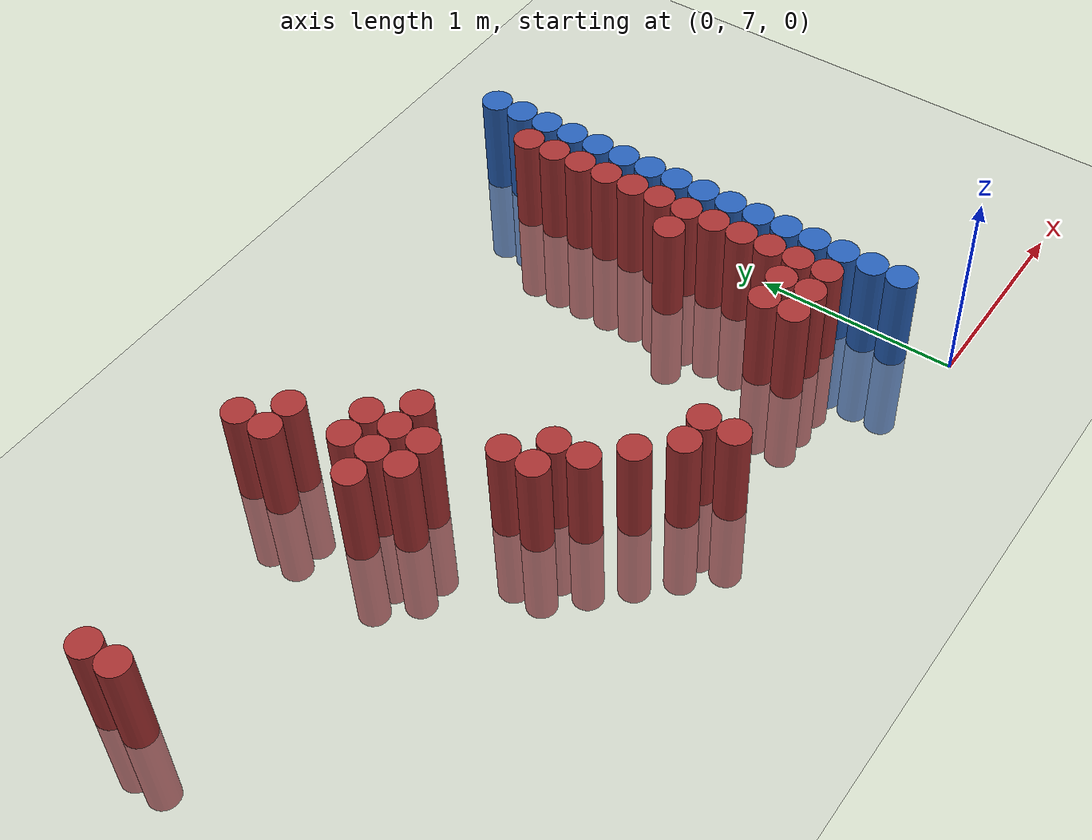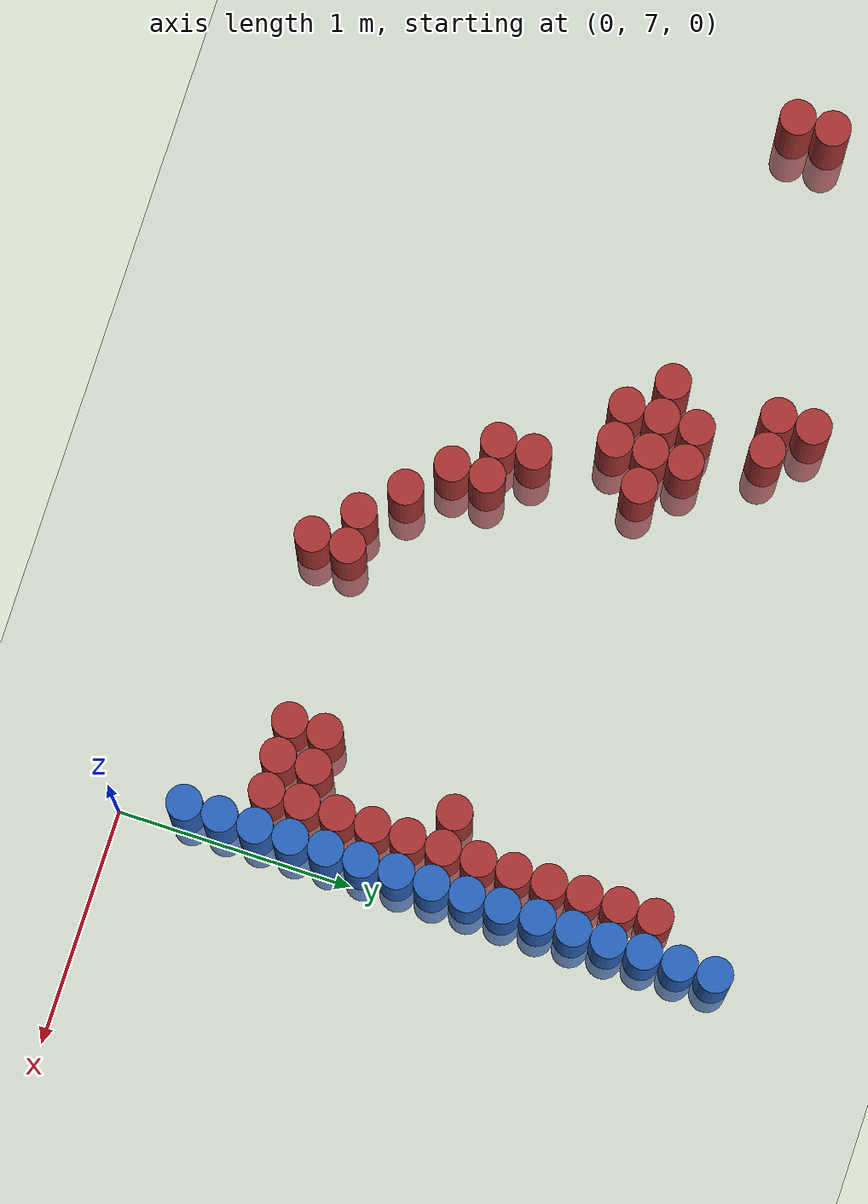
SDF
<sdf version="1.6">
 <world name="default">
  <model name="ground_plane">
   <static>1</static>
   <link name="link">
    <collision name="collision">
     <geometry><plane><normal>0 0 1</normal><size>100 100</size></plane></geometry>
     <surface><friction><ode><mu>100</mu><mu2>50</mu2></ode></friction></surface>
    </collision>
    <visual name="visual">
     <cast_shadows>0</cast_shadows>
     <geometry><plane><normal>0 0 1</normal><size>100 100</size></plane></geometry>
     <material>
      <script><uri>file://media/materials/scripts/gazebo.material</uri><name>Gazebo/Grey</name></script>
     </material>
    </visual>
   </link>
  </model>
  <model name="unit_cylinder_155">
   <static>1</static>
   <pose>-3.525000 8.775000 0.000000 0.000000 0.000000 0.000000</pose>
   <link name="link">
    <inertial>
     <mass>1</mass>
     <inertia><ixx>0.145833</ixx><ixy>0</ixy><ixz>0</ixz><iyy>0.145833</iyy><iyz>0</iyz><izz>0.125</izz></inertia>
    </inertial>
    <collision name="collision">
     <geometry><cylinder><radius>0.075000</radius><length>1</length></cylinder></geometry>
    </collision>
    <visual name="visual">
     <geometry><cylinder><radius>0.075000</radius><length>1</length></cylinder></geometry>
     <material>
      <ambient>0.648000 0.192000 0.192000 1</ambient>
      <diffuse>0.648000 0.192000 0.192000 1</diffuse>
     </material>
     <material>
      <script><name>Gazebo/Grey</name><uri>file://media/materials/scripts/gazebo.material</uri></script>
     </material>
    </visual>
   </link>
  </model>
  <model name="unit_cylinder_156">
   <static>1</static>
   <pose>-3.525000 8.925000 0.000000 0.000000 0.000000 0.000000</pose>
   <link name="link">
    <inertial>
     <mass>1</mass>
     <inertia><ixx>0.145833</ixx><ixy>0</ixy><ixz>0</ixz><iyy>0.145833</iyy><iyz>0</iyz><izz>0.125</izz></inertia>
    </inertial>
    <collision name="collision">
     <geometry><cylinder><radius>0.075000</radius><length>1</length></cylinder></geometry>
    </collision>
    <visual name="visual">
     <geometry><cylinder><radius>0.075000</radius><length>1</length></cylinder></geometry>
     <material>
      <ambient>0.648000 0.192000 0.192000 1</ambient>
      <diffuse>0.648000 0.192000 0.192000 1</diffuse>
     </material>
     <material>
      <script><name>Gazebo/Grey</name><uri>file://media/materials/scripts/gazebo.material</uri></script>
     </material>
    </visual>
   </link>
  </model>
  <model name="unit_cylinder_173">
   <static>1</static>
   <pose>-2.325000 8.625000 0.000000 0.000000 0.000000 0.000000</pose>
   <link name="link">
    <inertial>
     <mass>1</mass>
     <inertia><ixx>0.145833</ixx><ixy>0</ixy><ixz>0</ixz><iyy>0.145833</iyy><iyz>0</iyz><izz>0.125</izz></inertia>
    </inertial>
    <collision name="collision">
     <geometry><cylinder><radius>0.075000</radius><length>1</length></cylinder></geometry>
    </collision>
    <visual name="visual">
     <geometry><cylinder><radius>0.075000</radius><length>1</length></cylinder></geometry>
     <material>
      <ambient>0.648000 0.192000 0.192000 1</ambient>
      <diffuse>0.648000 0.192000 0.192000 1</diffuse>
     </material>
     <material>
      <script><name>Gazebo/Grey</name><uri>file://media/materials/scripts/gazebo.material</uri></script>
     </material>
    </visual>
   </link>
  </model>
  <model name="unit_cylinder_174">
   <static>1</static>
   <pose>-2.325000 9.075000 0.000000 0.000000 0.000000 0.000000</pose>
   <link name="link">
    <inertial>
     <mass>1</mass>
     <inertia><ixx>0.145833</ixx><ixy>0</ixy><ixz>0</ixz><iyy>0.145833</iyy><iyz>0</iyz><izz>0.125</izz></inertia>
    </inertial>
    <collision name="collision">
     <geometry><cylinder><radius>0.075000</radius><length>1</length></cylinder></geometry>
    </collision>
    <visual name="visual">
     <geometry><cylinder><radius>0.075000</radius><length>1</length></cylinder></geometry>
     <material>
      <ambient>0.648000 0.192000 0.192000 1</ambient>
      <diffuse>0.648000 0.192000 0.192000 1</diffuse>
     </material>
     <material>
      <script><name>Gazebo/Grey</name><uri>file://media/materials/scripts/gazebo.material</uri></script>
     </material>
    </visual>
   </link>
  </model>
  <model name="unit_cylinder_175">
   <static>1</static>
   <pose>-2.325000 9.225000 0.000000 0.000000 0.000000 0.000000</pose>
   <link name="link">
    <inertial>
     <mass>1</mass>
     <inertia><ixx>0.145833</ixx><ixy>0</ixy><ixz>0</ixz><iyy>0.145833</iyy><iyz>0</iyz><izz>0.125</izz></inertia>
    </inertial>
    <collision name="collision">
     <geometry><cylinder><radius>0.075000</radius><length>1</length></cylinder></geometry>
    </collision>
    <visual name="visual">
     <geometry><cylinder><radius>0.075000</radius><length>1</length></cylinder></geometry>
     <material>
      <ambient>0.648000 0.192000 0.192000 1</ambient>
      <diffuse>0.648000 0.192000 0.192000 1</diffuse>
     </material>
     <material>
      <script><name>Gazebo/Grey</name><uri>file://media/materials/scripts/gazebo.material</uri></script>
     </material>
    </visual>
   </link>
  </model>
  <model name="unit_cylinder_178">
   <static>1</static>
   <pose>-2.175000 8.475000 0.000000 0.000000 0.000000 0.000000</pose>
   <link name="link">
    <inertial>
     <mass>1</mass>
     <inertia><ixx>0.145833</ixx><ixy>0</ixy><ixz>0</ixz><iyy>0.145833</iyy><iyz>0</iyz><izz>0.125</izz></inertia>
    </inertial>
    <collision name="collision">
     <geometry><cylinder><radius>0.075000</radius><length>1</length></cylinder></geometry>
    </collision>
    <visual name="visual">
     <geometry><cylinder><radius>0.075000</radius><length>1</length></cylinder></geometry>
     <material>
      <ambient>0.648000 0.192000 0.192000 1</ambient>
      <diffuse>0.648000 0.192000 0.192000 1</diffuse>
     </material>
     <material>
      <script><name>Gazebo/Grey</name><uri>file://media/materials/scripts/gazebo.material</uri></script>
     </material>
    </visual>
   </link>
  </model>
  <model name="unit_cylinder_179">
   <static>1</static>
   <pose>-2.175000 8.625000 0.000000 0.000000 0.000000 0.000000</pose>
   <link name="link">
    <inertial>
     <mass>1</mass>
     <inertia><ixx>0.145833</ixx><ixy>0</ixy><ixz>0</ixz><iyy>0.145833</iyy><iyz>0</iyz><izz>0.125</izz></inertia>
    </inertial>
    <collision name="collision">
     <geometry><cylinder><radius>0.075000</radius><length>1</length></cylinder></geometry>
    </collision>
    <visual name="visual">
     <geometry><cylinder><radius>0.075000</radius><length>1</length></cylinder></geometry>
     <material>
      <ambient>0.648000 0.192000 0.192000 1</ambient>
      <diffuse>0.648000 0.192000 0.192000 1</diffuse>
     </material>
     <material>
      <script><name>Gazebo/Grey</name><uri>file://media/materials/scripts/gazebo.material</uri></script>
     </material>
    </visual>
   </link>
  </model>
  <model name="unit_cylinder_180">
   <static>1</static>
   <pose>-2.175000 8.775000 0.000000 0.000000 0.000000 0.000000</pose>
   <link name="link">
    <inertial>
     <mass>1</mass>
     <inertia><ixx>0.145833</ixx><ixy>0</ixy><ixz>0</ixz><iyy>0.145833</iyy><iyz>0</iyz><izz>0.125</izz></inertia>
    </inertial>
    <collision name="collision">
     <geometry><cylinder><radius>0.075000</radius><length>1</length></cylinder></geometry>
    </collision>
    <visual name="visual">
     <geometry><cylinder><radius>0.075000</radius><length>1</length></cylinder></geometry>
     <material>
      <ambient>0.648000 0.192000 0.192000 1</ambient>
      <diffuse>0.648000 0.192000 0.192000 1</diffuse>
     </material>
     <material>
      <script><name>Gazebo/Grey</name><uri>file://media/materials/scripts/gazebo.material</uri></script>
     </material>
    </visual>
   </link>
  </model>
  <model name="unit_cylinder_181">
   <static>1</static>
   <pose>-2.175000 9.075000 0.000000 0.000000 0.000000 0.000000</pose>
   <link name="link">
    <inertial>
     <mass>1</mass>
     <inertia><ixx>0.145833</ixx><ixy>0</ixy><ixz>0</ixz><iyy>0.145833</iyy><iyz>0</iyz><izz>0.125</izz></inertia>
    </inertial>
    <collision name="collision">
     <geometry><cylinder><radius>0.075000</radius><length>1</length></cylinder></geometry>
    </collision>
    <visual name="visual">
     <geometry><cylinder><radius>0.075000</radius><length>1</length></cylinder></geometry>
     <material>
      <ambient>0.648000 0.192000 0.192000 1</ambient>
      <diffuse>0.648000 0.192000 0.192000 1</diffuse>
     </material>
     <material>
      <script><name>Gazebo/Grey</name><uri>file://media/materials/scripts/gazebo.material</uri></script>
     </material>
    </visual>
   </link>
  </model>
  <model name="unit_cylinder_184">
   <static>1</static>
   <pose>-2.025000 8.475000 0.000000 0.000000 0.000000 0.000000</pose>
   <link name="link">
    <inertial>
     <mass>1</mass>
     <inertia><ixx>0.145833</ixx><ixy>0</ixy><ixz>0</ixz><iyy>0.145833</iyy><iyz>0</iyz><izz>0.125</izz></inertia>
    </inertial>
    <collision name="collision">
     <geometry><cylinder><radius>0.075000</radius><length>1</length></cylinder></geometry>
    </collision>
    <visual name="visual">
     <geometry><cylinder><radius>0.075000</radius><length>1</length></cylinder></geometry>
     <material>
      <ambient>0.648000 0.192000 0.192000 1</ambient>
      <diffuse>0.648000 0.192000 0.192000 1</diffuse>
     </material>
     <material>
      <script><name>Gazebo/Grey</name><uri>file://media/materials/scripts/gazebo.material</uri></script>
     </material>
    </visual>
   </link>
  </model>
  <model name="unit_cylinder_185">
   <static>1</static>
   <pose>-2.025000 8.625000 0.000000 0.000000 0.000000 0.000000</pose>
   <link name="link">
    <inertial>
     <mass>1</mass>
     <inertia><ixx>0.145833</ixx><ixy>0</ixy><ixz>0</ixz><iyy>0.145833</iyy><iyz>0</iyz><izz>0.125</izz></inertia>
    </inertial>
    <collision name="collision">
     <geometry><cylinder><radius>0.075000</radius><length>1</length></cylinder></geometry>
    </collision>
    <visual name="visual">
     <geometry><cylinder><radius>0.075000</radius><length>1</length></cylinder></geometry>
     <material>
      <ambient>0.648000 0.192000 0.192000 1</ambient>
      <diffuse>0.648000 0.192000 0.192000 1</diffuse>
     </material>
     <material>
      <script><name>Gazebo/Grey</name><uri>file://media/materials/scripts/gazebo.material</uri></script>
     </material>
    </visual>
   </link>
  </model>
  <model name="unit_cylinder_186">
   <static>1</static>
   <pose>-2.025000 8.775000 0.000000 0.000000 0.000000 0.000000</pose>
   <link name="link">
    <inertial>
     <mass>1</mass>
     <inertia><ixx>0.145833</ixx><ixy>0</ixy><ixz>0</ixz><iyy>0.145833</iyy><iyz>0</iyz><izz>0.125</izz></inertia>
    </inertial>
    <collision name="collision">
     <geometry><cylinder><radius>0.075000</radius><length>1</length></cylinder></geometry>
    </collision>
    <visual name="visual">
     <geometry><cylinder><radius>0.075000</radius><length>1</length></cylinder></geometry>
     <material>
      <ambient>0.648000 0.192000 0.192000 1</ambient>
      <diffuse>0.648000 0.192000 0.192000 1</diffuse>
     </material>
     <material>
      <script><name>Gazebo/Grey</name><uri>file://media/materials/scripts/gazebo.material</uri></script>
     </material>
    </visual>
   </link>
  </model>
  <model name="unit_cylinder_191">
   <static>1</static>
   <pose>-1.875000 8.025000 0.000000 0.000000 0.000000 0.000000</pose>
   <link name="link">
    <inertial>
     <mass>1</mass>
     <inertia><ixx>0.145833</ixx><ixy>0</ixy><ixz>0</ixz><iyy>0.145833</iyy><iyz>0</iyz><izz>0.125</izz></inertia>
    </inertial>
    <collision name="collision">
     <geometry><cylinder><radius>0.075000</radius><length>1</length></cylinder></geometry>
    </collision>
    <visual name="visual">
     <geometry><cylinder><radius>0.075000</radius><length>1</length></cylinder></geometry>
     <material>
      <ambient>0.648000 0.192000 0.192000 1</ambient>
      <diffuse>0.648000 0.192000 0.192000 1</diffuse>
     </material>
     <material>
      <script><name>Gazebo/Grey</name><uri>file://media/materials/scripts/gazebo.material</uri></script>
     </material>
    </visual>
   </link>
  </model>
  <model name="unit_cylinder_192">
   <static>1</static>
   <pose>-1.875000 8.175000 0.000000 0.000000 0.000000 0.000000</pose>
   <link name="link">
    <inertial>
     <mass>1</mass>
     <inertia><ixx>0.145833</ixx><ixy>0</ixy><ixz>0</ixz><iyy>0.145833</iyy><iyz>0</iyz><izz>0.125</izz></inertia>
    </inertial>
    <collision name="collision">
     <geometry><cylinder><radius>0.075000</radius><length>1</length></cylinder></geometry>
    </collision>
    <visual name="visual">
     <geometry><cylinder><radius>0.075000</radius><length>1</length></cylinder></geometry>
     <material>
      <ambient>0.648000 0.192000 0.192000 1</ambient>
      <diffuse>0.648000 0.192000 0.192000 1</diffuse>
     </material>
     <material>
      <script><name>Gazebo/Grey</name><uri>file://media/materials/scripts/gazebo.material</uri></script>
     </material>
    </visual>
   </link>
  </model>
  <model name="unit_cylinder_193">
   <static>1</static>
   <pose>-1.875000 8.625000 0.000000 0.000000 0.000000 0.000000</pose>
   <link name="link">
    <inertial>
     <mass>1</mass>
     <inertia><ixx>0.145833</ixx><ixy>0</ixy><ixz>0</ixz><iyy>0.145833</iyy><iyz>0</iyz><izz>0.125</izz></inertia>
    </inertial>
    <collision name="collision">
     <geometry><cylinder><radius>0.075000</radius><length>1</length></cylinder></geometry>
    </collision>
    <visual name="visual">
     <geometry><cylinder><radius>0.075000</radius><length>1</length></cylinder></geometry>
     <material>
      <ambient>0.648000 0.192000 0.192000 1</ambient>
      <diffuse>0.648000 0.192000 0.192000 1</diffuse>
     </material>
     <material>
      <script><name>Gazebo/Grey</name><uri>file://media/materials/scripts/gazebo.material</uri></script>
     </material>
    </visual>
   </link>
  </model>
  <model name="unit_cylinder_197">
   <static>1</static>
   <pose>-1.725000 7.875000 0.000000 0.000000 0.000000 0.000000</pose>
   <link name="link">
    <inertial>
     <mass>1</mass>
     <inertia><ixx>0.145833</ixx><ixy>0</ixy><ixz>0</ixz><iyy>0.145833</iyy><iyz>0</iyz><izz>0.125</izz></inertia>
    </inertial>
    <collision name="collision">
     <geometry><cylinder><radius>0.075000</radius><length>1</length></cylinder></geometry>
    </collision>
    <visual name="visual">
     <geometry><cylinder><radius>0.075000</radius><length>1</length></cylinder></geometry>
     <material>
      <ambient>0.648000 0.192000 0.192000 1</ambient>
      <diffuse>0.648000 0.192000 0.192000 1</diffuse>
     </material>
     <material>
      <script><name>Gazebo/Grey</name><uri>file://media/materials/scripts/gazebo.material</uri></script>
     </material>
    </visual>
   </link>
  </model>
  <model name="unit_cylinder_198">
   <static>1</static>
   <pose>-1.725000 8.025000 0.000000 0.000000 0.000000 0.000000</pose>
   <link name="link">
    <inertial>
     <mass>1</mass>
     <inertia><ixx>0.145833</ixx><ixy>0</ixy><ixz>0</ixz><iyy>0.145833</iyy><iyz>0</iyz><izz>0.125</izz></inertia>
    </inertial>
    <collision name="collision">
     <geometry><cylinder><radius>0.075000</radius><length>1</length></cylinder></geometry>
    </collision>
    <visual name="visual">
     <geometry><cylinder><radius>0.075000</radius><length>1</length></cylinder></geometry>
     <material>
      <ambient>0.648000 0.192000 0.192000 1</ambient>
      <diffuse>0.648000 0.192000 0.192000 1</diffuse>
     </material>
     <material>
      <script><name>Gazebo/Grey</name><uri>file://media/materials/scripts/gazebo.material</uri></script>
     </material>
    </visual>
   </link>
  </model>
  <model name="unit_cylinder_199">
   <static>1</static>
   <pose>-1.575000 7.725000 0.000000 0.000000 0.000000 0.000000</pose>
   <link name="link">
    <inertial>
     <mass>1</mass>
     <inertia><ixx>0.145833</ixx><ixy>0</ixy><ixz>0</ixz><iyy>0.145833</iyy><iyz>0</iyz><izz>0.125</izz></inertia>
    </inertial>
    <collision name="collision">
     <geometry><cylinder><radius>0.075000</radius><length>1</length></cylinder></geometry>
    </collision>
    <visual name="visual">
     <geometry><cylinder><radius>0.075000</radius><length>1</length></cylinder></geometry>
     <material>
      <ambient>0.648000 0.192000 0.192000 1</ambient>
      <diffuse>0.648000 0.192000 0.192000 1</diffuse>
     </material>
     <material>
      <script><name>Gazebo/Grey</name><uri>file://media/materials/scripts/gazebo.material</uri></script>
     </material>
    </visual>
   </link>
  </model>
  <model name="unit_cylinder_203">
   <static>1</static>
   <pose>-1.425000 7.575000 0.000000 0.000000 0.000000 0.000000</pose>
   <link name="link">
    <inertial>
     <mass>1</mass>
     <inertia><ixx>0.145833</ixx><ixy>0</ixy><ixz>0</ixz><iyy>0.145833</iyy><iyz>0</iyz><izz>0.125</izz></inertia>
    </inertial>
    <collision name="collision">
     <geometry><cylinder><radius>0.075000</radius><length>1</length></cylinder></geometry>
    </collision>
    <visual name="visual">
     <geometry><cylinder><radius>0.075000</radius><length>1</length></cylinder></geometry>
     <material>
      <ambient>0.648000 0.192000 0.192000 1</ambient>
      <diffuse>0.648000 0.192000 0.192000 1</diffuse>
     </material>
     <material>
      <script><name>Gazebo/Grey</name><uri>file://media/materials/scripts/gazebo.material</uri></script>
     </material>
    </visual>
   </link>
  </model>
  <model name="unit_cylinder_208">
   <static>1</static>
   <pose>-1.275000 7.425000 0.000000 0.000000 0.000000 0.000000</pose>
   <link name="link">
    <inertial>
     <mass>1</mass>
     <inertia><ixx>0.145833</ixx><ixy>0</ixy><ixz>0</ixz><iyy>0.145833</iyy><iyz>0</iyz><izz>0.125</izz></inertia>
    </inertial>
    <collision name="collision">
     <geometry><cylinder><radius>0.075000</radius><length>1</length></cylinder></geometry>
    </collision>
    <visual name="visual">
     <geometry><cylinder><radius>0.075000</radius><length>1</length></cylinder></geometry>
     <material>
      <ambient>0.648000 0.192000 0.192000 1</ambient>
      <diffuse>0.648000 0.192000 0.192000 1</diffuse>
     </material>
     <material>
      <script><name>Gazebo/Grey</name><uri>file://media/materials/scripts/gazebo.material</uri></script>
     </material>
    </visual>
   </link>
  </model>
  <model name="unit_cylinder_209">
   <static>1</static>
   <pose>-1.275000 7.575000 0.000000 0.000000 0.000000 0.000000</pose>
   <link name="link">
    <inertial>
     <mass>1</mass>
     <inertia><ixx>0.145833</ixx><ixy>0</ixy><ixz>0</ixz><iyy>0.145833</iyy><iyz>0</iyz><izz>0.125</izz></inertia>
    </inertial>
    <collision name="collision">
     <geometry><cylinder><radius>0.075000</radius><length>1</length></cylinder></geometry>
    </collision>
    <visual name="visual">
     <geometry><cylinder><radius>0.075000</radius><length>1</length></cylinder></geometry>
     <material>
      <ambient>0.648000 0.192000 0.192000 1</ambient>
      <diffuse>0.648000 0.192000 0.192000 1</diffuse>
     </material>
     <material>
      <script><name>Gazebo/Grey</name><uri>file://media/materials/scripts/gazebo.material</uri></script>
     </material>
    </visual>
   </link>
  </model>
  <model name="unit_cylinder_216">
   <static>1</static>
   <pose>-0.525000 7.575000 0.000000 0.000000 0.000000 0.000000</pose>
   <link name="link">
    <inertial>
     <mass>1</mass>
     <inertia><ixx>0.145833</ixx><ixy>0</ixy><ixz>0</ixz><iyy>0.145833</iyy><iyz>0</iyz><izz>0.125</izz></inertia>
    </inertial>
    <collision name="collision">
     <geometry><cylinder><radius>0.075000</radius><length>1</length></cylinder></geometry>
    </collision>
    <visual name="visual">
     <geometry><cylinder><radius>0.075000</radius><length>1</length></cylinder></geometry>
     <material>
      <ambient>0.648000 0.192000 0.192000 1</ambient>
      <diffuse>0.648000 0.192000 0.192000 1</diffuse>
     </material>
     <material>
      <script><name>Gazebo/Grey</name><uri>file://media/materials/scripts/gazebo.material</uri></script>
     </material>
    </visual>
   </link>
  </model>
  <model name="unit_cylinder_217">
   <static>1</static>
   <pose>-0.525000 7.725000 0.000000 0.000000 0.000000 0.000000</pose>
   <link name="link">
    <inertial>
     <mass>1</mass>
     <inertia><ixx>0.145833</ixx><ixy>0</ixy><ixz>0</ixz><iyy>0.145833</iyy><iyz>0</iyz><izz>0.125</izz></inertia>
    </inertial>
    <collision name="collision">
     <geometry><cylinder><radius>0.075000</radius><length>1</length></cylinder></geometry>
    </collision>
    <visual name="visual">
     <geometry><cylinder><radius>0.075000</radius><length>1</length></cylinder></geometry>
     <material>
      <ambient>0.648000 0.192000 0.192000 1</ambient>
      <diffuse>0.648000 0.192000 0.192000 1</diffuse>
     </material>
     <material>
      <script><name>Gazebo/Grey</name><uri>file://media/materials/scripts/gazebo.material</uri></script>
     </material>
    </visual>
   </link>
  </model>
  <model name="unit_cylinder_220">
   <static>1</static>
   <pose>-0.375000 7.575000 0.000000 0.000000 0.000000 0.000000</pose>
   <link name="link">
    <inertial>
     <mass>1</mass>
     <inertia><ixx>0.145833</ixx><ixy>0</ixy><ixz>0</ixz><iyy>0.145833</iyy><iyz>0</iyz><izz>0.125</izz></inertia>
    </inertial>
    <collision name="collision">
     <geometry><cylinder><radius>0.075000</radius><length>1</length></cylinder></geometry>
    </collision>
    <visual name="visual">
     <geometry><cylinder><radius>0.075000</radius><length>1</length></cylinder></geometry>
     <material>
      <ambient>0.648000 0.192000 0.192000 1</ambient>
      <diffuse>0.648000 0.192000 0.192000 1</diffuse>
     </material>
     <material>
      <script><name>Gazebo/Grey</name><uri>file://media/materials/scripts/gazebo.material</uri></script>
     </material>
    </visual>
   </link>
  </model>
  <model name="unit_cylinder_221">
   <static>1</static>
   <pose>-0.375000 7.725000 0.000000 0.000000 0.000000 0.000000</pose>
   <link name="link">
    <inertial>
     <mass>1</mass>
     <inertia><ixx>0.145833</ixx><ixy>0</ixy><ixz>0</ixz><iyy>0.145833</iyy><iyz>0</iyz><izz>0.125</izz></inertia>
    </inertial>
    <collision name="collision">
     <geometry><cylinder><radius>0.075000</radius><length>1</length></cylinder></geometry>
    </collision>
    <visual name="visual">
     <geometry><cylinder><radius>0.075000</radius><length>1</length></cylinder></geometry>
     <material>
      <ambient>0.648000 0.192000 0.192000 1</ambient>
      <diffuse>0.648000 0.192000 0.192000 1</diffuse>
     </material>
     <material>
      <script><name>Gazebo/Grey</name><uri>file://media/materials/scripts/gazebo.material</uri></script>
     </material>
    </visual>
   </link>
  </model>
  <model name="unit_cylinder_222">
   <static>1</static>
   <pose>-0.375000 8.325000 0.000000 0.000000 0.000000 0.000000</pose>
   <link name="link">
    <inertial>
     <mass>1</mass>
     <inertia><ixx>0.145833</ixx><ixy>0</ixy><ixz>0</ixz><iyy>0.145833</iyy><iyz>0</iyz><izz>0.125</izz></inertia>
    </inertial>
    <collision name="collision">
     <geometry><cylinder><radius>0.075000</radius><length>1</length></cylinder></geometry>
    </collision>
    <visual name="visual">
     <geometry><cylinder><radius>0.075000</radius><length>1</length></cylinder></geometry>
     <material>
      <ambient>0.648000 0.192000 0.192000 1</ambient>
      <diffuse>0.648000 0.192000 0.192000 1</diffuse>
     </material>
     <material>
      <script><name>Gazebo/Grey</name><uri>file://media/materials/scripts/gazebo.material</uri></script>
     </material>
    </visual>
   </link>
  </model>
  <model name="unit_cylinder_229">
   <static>1</static>
   <pose>-0.225000 7.575000 0.000000 0.000000 0.000000 0.000000</pose>
   <link name="link">
    <inertial>
     <mass>1</mass>
     <inertia><ixx>0.145833</ixx><ixy>0</ixy><ixz>0</ixz><iyy>0.145833</iyy><iyz>0</iyz><izz>0.125</izz></inertia>
    </inertial>
    <collision name="collision">
     <geometry><cylinder><radius>0.075000</radius><length>1</length></cylinder></geometry>
    </collision>
    <visual name="visual">
     <geometry><cylinder><radius>0.075000</radius><length>1</length></cylinder></geometry>
     <material>
      <ambient>0.648000 0.192000 0.192000 1</ambient>
      <diffuse>0.648000 0.192000 0.192000 1</diffuse>
     </material>
     <material>
      <script><name>Gazebo/Grey</name><uri>file://media/materials/scripts/gazebo.material</uri></script>
     </material>
    </visual>
   </link>
  </model>
  <model name="unit_cylinder_230">
   <static>1</static>
   <pose>-0.225000 7.725000 0.000000 0.000000 0.000000 0.000000</pose>
   <link name="link">
    <inertial>
     <mass>1</mass>
     <inertia><ixx>0.145833</ixx><ixy>0</ixy><ixz>0</ixz><iyy>0.145833</iyy><iyz>0</iyz><izz>0.125</izz></inertia>
    </inertial>
    <collision name="collision">
     <geometry><cylinder><radius>0.075000</radius><length>1</length></cylinder></geometry>
    </collision>
    <visual name="visual">
     <geometry><cylinder><radius>0.075000</radius><length>1</length></cylinder></geometry>
     <material>
      <ambient>0.648000 0.192000 0.192000 1</ambient>
      <diffuse>0.648000 0.192000 0.192000 1</diffuse>
     </material>
     <material>
      <script><name>Gazebo/Grey</name><uri>file://media/materials/scripts/gazebo.material</uri></script>
     </material>
    </visual>
   </link>
  </model>
  <model name="unit_cylinder_231">
   <static>1</static>
   <pose>-0.225000 7.875000 0.000000 0.000000 0.000000 0.000000</pose>
   <link name="link">
    <inertial>
     <mass>1</mass>
     <inertia><ixx>0.145833</ixx><ixy>0</ixy><ixz>0</ixz><iyy>0.145833</iyy><iyz>0</iyz><izz>0.125</izz></inertia>
    </inertial>
    <collision name="collision">
     <geometry><cylinder><radius>0.075000</radius><length>1</length></cylinder></geometry>
    </collision>
    <visual name="visual">
     <geometry><cylinder><radius>0.075000</radius><length>1</length></cylinder></geometry>
     <material>
      <ambient>0.648000 0.192000 0.192000 1</ambient>
      <diffuse>0.648000 0.192000 0.192000 1</diffuse>
     </material>
     <material>
      <script><name>Gazebo/Grey</name><uri>file://media/materials/scripts/gazebo.material</uri></script>
     </material>
    </visual>
   </link>
  </model>
  <model name="unit_cylinder_232">
   <static>1</static>
   <pose>-0.225000 8.025000 0.000000 0.000000 0.000000 0.000000</pose>
   <link name="link">
    <inertial>
     <mass>1</mass>
     <inertia><ixx>0.145833</ixx><ixy>0</ixy><ixz>0</ixz><iyy>0.145833</iyy><iyz>0</iyz><izz>0.125</izz></inertia>
    </inertial>
    <collision name="collision">
     <geometry><cylinder><radius>0.075000</radius><length>1</length></cylinder></geometry>
    </collision>
    <visual name="visual">
     <geometry><cylinder><radius>0.075000</radius><length>1</length></cylinder></geometry>
     <material>
      <ambient>0.648000 0.192000 0.192000 1</ambient>
      <diffuse>0.648000 0.192000 0.192000 1</diffuse>
     </material>
     <material>
      <script><name>Gazebo/Grey</name><uri>file://media/materials/scripts/gazebo.material</uri></script>
     </material>
    </visual>
   </link>
  </model>
  <model name="unit_cylinder_233">
   <static>1</static>
   <pose>-0.225000 8.175000 0.000000 0.000000 0.000000 0.000000</pose>
   <link name="link">
    <inertial>
     <mass>1</mass>
     <inertia><ixx>0.145833</ixx><ixy>0</ixy><ixz>0</ixz><iyy>0.145833</iyy><iyz>0</iyz><izz>0.125</izz></inertia>
    </inertial>
    <collision name="collision">
     <geometry><cylinder><radius>0.075000</radius><length>1</length></cylinder></geometry>
    </collision>
    <visual name="visual">
     <geometry><cylinder><radius>0.075000</radius><length>1</length></cylinder></geometry>
     <material>
      <ambient>0.648000 0.192000 0.192000 1</ambient>
      <diffuse>0.648000 0.192000 0.192000 1</diffuse>
     </material>
     <material>
      <script><name>Gazebo/Grey</name><uri>file://media/materials/scripts/gazebo.material</uri></script>
     </material>
    </visual>
   </link>
  </model>
  <model name="unit_cylinder_234">
   <static>1</static>
   <pose>-0.225000 8.325000 0.000000 0.000000 0.000000 0.000000</pose>
   <link name="link">
    <inertial>
     <mass>1</mass>
     <inertia><ixx>0.145833</ixx><ixy>0</ixy><ixz>0</ixz><iyy>0.145833</iyy><iyz>0</iyz><izz>0.125</izz></inertia>
    </inertial>
    <collision name="collision">
     <geometry><cylinder><radius>0.075000</radius><length>1</length></cylinder></geometry>
    </collision>
    <visual name="visual">
     <geometry><cylinder><radius>0.075000</radius><length>1</length></cylinder></geometry>
     <material>
      <ambient>0.648000 0.192000 0.192000 1</ambient>
      <diffuse>0.648000 0.192000 0.192000 1</diffuse>
     </material>
     <material>
      <script><name>Gazebo/Grey</name><uri>file://media/materials/scripts/gazebo.material</uri></script>
     </material>
    </visual>
   </link>
  </model>
  <model name="unit_cylinder_235">
   <static>1</static>
   <pose>-0.225000 8.475000 0.000000 0.000000 0.000000 0.000000</pose>
   <link name="link">
    <inertial>
     <mass>1</mass>
     <inertia><ixx>0.145833</ixx><ixy>0</ixy><ixz>0</ixz><iyy>0.145833</iyy><iyz>0</iyz><izz>0.125</izz></inertia>
    </inertial>
    <collision name="collision">
     <geometry><cylinder><radius>0.075000</radius><length>1</length></cylinder></geometry>
    </collision>
    <visual name="visual">
     <geometry><cylinder><radius>0.075000</radius><length>1</length></cylinder></geometry>
     <material>
      <ambient>0.648000 0.192000 0.192000 1</ambient>
      <diffuse>0.648000 0.192000 0.192000 1</diffuse>
     </material>
     <material>
      <script><name>Gazebo/Grey</name><uri>file://media/materials/scripts/gazebo.material</uri></script>
     </material>
    </visual>
   </link>
  </model>
  <model name="unit_cylinder_236">
   <static>1</static>
   <pose>-0.225000 8.625000 0.000000 0.000000 0.000000 0.000000</pose>
   <link name="link">
    <inertial>
     <mass>1</mass>
     <inertia><ixx>0.145833</ixx><ixy>0</ixy><ixz>0</ixz><iyy>0.145833</iyy><iyz>0</iyz><izz>0.125</izz></inertia>
    </inertial>
    <collision name="collision">
     <geometry><cylinder><radius>0.075000</radius><length>1</length></cylinder></geometry>
    </collision>
    <visual name="visual">
     <geometry><cylinder><radius>0.075000</radius><length>1</length></cylinder></geometry>
     <material>
      <ambient>0.648000 0.192000 0.192000 1</ambient>
      <diffuse>0.648000 0.192000 0.192000 1</diffuse>
     </material>
     <material>
      <script><name>Gazebo/Grey</name><uri>file://media/materials/scripts/gazebo.material</uri></script>
     </material>
    </visual>
   </link>
  </model>
  <model name="unit_cylinder_237">
   <static>1</static>
   <pose>-0.225000 8.775000 0.000000 0.000000 0.000000 0.000000</pose>
   <link name="link">
    <inertial>
     <mass>1</mass>
     <inertia><ixx>0.145833</ixx><ixy>0</ixy><ixz>0</ixz><iyy>0.145833</iyy><iyz>0</iyz><izz>0.125</izz></inertia>
    </inertial>
    <collision name="collision">
     <geometry><cylinder><radius>0.075000</radius><length>1</length></cylinder></geometry>
    </collision>
    <visual name="visual">
     <geometry><cylinder><radius>0.075000</radius><length>1</length></cylinder></geometry>
     <material>
      <ambient>0.648000 0.192000 0.192000 1</ambient>
      <diffuse>0.648000 0.192000 0.192000 1</diffuse>
     </material>
     <material>
      <script><name>Gazebo/Grey</name><uri>file://media/materials/scripts/gazebo.material</uri></script>
     </material>
    </visual>
   </link>
  </model>
  <model name="unit_cylinder_238">
   <static>1</static>
   <pose>-0.225000 8.925000 0.000000 0.000000 0.000000 0.000000</pose>
   <link name="link">
    <inertial>
     <mass>1</mass>
     <inertia><ixx>0.145833</ixx><ixy>0</ixy><ixz>0</ixz><iyy>0.145833</iyy><iyz>0</iyz><izz>0.125</izz></inertia>
    </inertial>
    <collision name="collision">
     <geometry><cylinder><radius>0.075000</radius><length>1</length></cylinder></geometry>
    </collision>
    <visual name="visual">
     <geometry><cylinder><radius>0.075000</radius><length>1</length></cylinder></geometry>
     <material>
      <ambient>0.648000 0.192000 0.192000 1</ambient>
      <diffuse>0.648000 0.192000 0.192000 1</diffuse>
     </material>
     <material>
      <script><name>Gazebo/Grey</name><uri>file://media/materials/scripts/gazebo.material</uri></script>
     </material>
    </visual>
   </link>
  </model>
  <model name="unit_cylinder_239">
   <static>1</static>
   <pose>-0.225000 9.075000 0.000000 0.000000 0.000000 0.000000</pose>
   <link name="link">
    <inertial>
     <mass>1</mass>
     <inertia><ixx>0.145833</ixx><ixy>0</ixy><ixz>0</ixz><iyy>0.145833</iyy><iyz>0</iyz><izz>0.125</izz></inertia>
    </inertial>
    <collision name="collision">
     <geometry><cylinder><radius>0.075000</radius><length>1</length></cylinder></geometry>
    </collision>
    <visual name="visual">
     <geometry><cylinder><radius>0.075000</radius><length>1</length></cylinder></geometry>
     <material>
      <ambient>0.648000 0.192000 0.192000 1</ambient>
      <diffuse>0.648000 0.192000 0.192000 1</diffuse>
     </material>
     <material>
      <script><name>Gazebo/Grey</name><uri>file://media/materials/scripts/gazebo.material</uri></script>
     </material>
    </visual>
   </link>
  </model>
  <model name="unit_cylinder_240">
   <static>1</static>
   <pose>-0.225000 9.225000 0.000000 0.000000 0.000000 0.000000</pose>
   <link name="link">
    <inertial>
     <mass>1</mass>
     <inertia><ixx>0.145833</ixx><ixy>0</ixy><ixz>0</ixz><iyy>0.145833</iyy><iyz>0</iyz><izz>0.125</izz></inertia>
    </inertial>
    <collision name="collision">
     <geometry><cylinder><radius>0.075000</radius><length>1</length></cylinder></geometry>
    </collision>
    <visual name="visual">
     <geometry><cylinder><radius>0.075000</radius><length>1</length></cylinder></geometry>
     <material>
      <ambient>0.648000 0.192000 0.192000 1</ambient>
      <diffuse>0.648000 0.192000 0.192000 1</diffuse>
     </material>
     <material>
      <script><name>Gazebo/Grey</name><uri>file://media/materials/scripts/gazebo.material</uri></script>
     </material>
    </visual>
   </link>
  </model>
  <model name="unit_cylinder_255">
   <static>1</static>
   <pose>-0.075000 7.275000 0.000000 0.000000 0.000000 0.000000</pose>
   <link name="link">
    <inertial>
     <mass>1</mass>
     <inertia><ixx>0.145833</ixx><ixy>0</ixy><ixz>0</ixz><iyy>0.145833</iyy><iyz>0</iyz><izz>0.125</izz></inertia>
    </inertial>
    <collision name="collision">
     <geometry><cylinder><radius>0.075000</radius><length>1</length></cylinder></geometry>
    </collision>
    <visual name="visual">
     <geometry><cylinder><radius>0.075000</radius><length>1</length></cylinder></geometry>
     <material>
      <ambient>0.152000 0.379000 0.720000 1</ambient>
      <diffuse>0.152000 0.379000 0.720000 1</diffuse>
     </material>
     <material>
      <script><name>Gazebo/Grey</name><uri>file://media/materials/scripts/gazebo.material</uri></script>
     </material>
    </visual>
   </link>
  </model>
  <model name="unit_cylinder_256">
   <static>1</static>
   <pose>-0.075000 7.425000 0.000000 0.000000 0.000000 0.000000</pose>
   <link name="link">
    <inertial>
     <mass>1</mass>
     <inertia><ixx>0.145833</ixx><ixy>0</ixy><ixz>0</ixz><iyy>0.145833</iyy><iyz>0</iyz><izz>0.125</izz></inertia>
    </inertial>
    <collision name="collision">
     <geometry><cylinder><radius>0.075000</radius><length>1</length></cylinder></geometry>
    </collision>
    <visual name="visual">
     <geometry><cylinder><radius>0.075000</radius><length>1</length></cylinder></geometry>
     <material>
      <ambient>0.152000 0.379000 0.720000 1</ambient>
      <diffuse>0.152000 0.379000 0.720000 1</diffuse>
     </material>
     <material>
      <script><name>Gazebo/Grey</name><uri>file://media/materials/scripts/gazebo.material</uri></script>
     </material>
    </visual>
   </link>
  </model>
  <model name="unit_cylinder_257">
   <static>1</static>
   <pose>-0.075000 7.575000 0.000000 0.000000 0.000000 0.000000</pose>
   <link name="link">
    <inertial>
     <mass>1</mass>
     <inertia><ixx>0.145833</ixx><ixy>0</ixy><ixz>0</ixz><iyy>0.145833</iyy><iyz>0</iyz><izz>0.125</izz></inertia>
    </inertial>
    <collision name="collision">
     <geometry><cylinder><radius>0.075000</radius><length>1</length></cylinder></geometry>
    </collision>
    <visual name="visual">
     <geometry><cylinder><radius>0.075000</radius><length>1</length></cylinder></geometry>
     <material>
      <ambient>0.152000 0.379000 0.720000 1</ambient>
      <diffuse>0.152000 0.379000 0.720000 1</diffuse>
     </material>
     <material>
      <script><name>Gazebo/Grey</name><uri>file://media/materials/scripts/gazebo.material</uri></script>
     </material>
    </visual>
   </link>
  </model>
  <model name="unit_cylinder_258">
   <static>1</static>
   <pose>-0.075000 7.725000 0.000000 0.000000 0.000000 0.000000</pose>
   <link name="link">
    <inertial>
     <mass>1</mass>
     <inertia><ixx>0.145833</ixx><ixy>0</ixy><ixz>0</ixz><iyy>0.145833</iyy><iyz>0</iyz><izz>0.125</izz></inertia>
    </inertial>
    <collision name="collision">
     <geometry><cylinder><radius>0.075000</radius><length>1</length></cylinder></geometry>
    </collision>
    <visual name="visual">
     <geometry><cylinder><radius>0.075000</radius><length>1</length></cylinder></geometry>
     <material>
      <ambient>0.152000 0.379000 0.720000 1</ambient>
      <diffuse>0.152000 0.379000 0.720000 1</diffuse>
     </material>
     <material>
      <script><name>Gazebo/Grey</name><uri>file://media/materials/scripts/gazebo.material</uri></script>
     </material>
    </visual>
   </link>
  </model>
  <model name="unit_cylinder_259">
   <static>1</static>
   <pose>-0.075000 7.875000 0.000000 0.000000 0.000000 0.000000</pose>
   <link name="link">
    <inertial>
     <mass>1</mass>
     <inertia><ixx>0.145833</ixx><ixy>0</ixy><ixz>0</ixz><iyy>0.145833</iyy><iyz>0</iyz><izz>0.125</izz></inertia>
    </inertial>
    <collision name="collision">
     <geometry><cylinder><radius>0.075000</radius><length>1</length></cylinder></geometry>
    </collision>
    <visual name="visual">
     <geometry><cylinder><radius>0.075000</radius><length>1</length></cylinder></geometry>
     <material>
      <ambient>0.152000 0.379000 0.720000 1</ambient>
      <diffuse>0.152000 0.379000 0.720000 1</diffuse>
     </material>
     <material>
      <script><name>Gazebo/Grey</name><uri>file://media/materials/scripts/gazebo.material</uri></script>
     </material>
    </visual>
   </link>
  </model>
  <model name="unit_cylinder_260">
   <static>1</static>
   <pose>-0.075000 8.025000 0.000000 0.000000 0.000000 0.000000</pose>
   <link name="link">
    <inertial>
     <mass>1</mass>
     <inertia><ixx>0.145833</ixx><ixy>0</ixy><ixz>0</ixz><iyy>0.145833</iyy><iyz>0</iyz><izz>0.125</izz></inertia>
    </inertial>
    <collision name="collision">
     <geometry><cylinder><radius>0.075000</radius><length>1</length></cylinder></geometry>
    </collision>
    <visual name="visual">
     <geometry><cylinder><radius>0.075000</radius><length>1</length></cylinder></geometry>
     <material>
      <ambient>0.152000 0.379000 0.720000 1</ambient>
      <diffuse>0.152000 0.379000 0.720000 1</diffuse>
     </material>
     <material>
      <script><name>Gazebo/Grey</name><uri>file://media/materials/scripts/gazebo.material</uri></script>
     </material>
    </visual>
   </link>
  </model>
  <model name="unit_cylinder_261">
   <static>1</static>
   <pose>-0.075000 8.175000 0.000000 0.000000 0.000000 0.000000</pose>
   <link name="link">
    <inertial>
     <mass>1</mass>
     <inertia><ixx>0.145833</ixx><ixy>0</ixy><ixz>0</ixz><iyy>0.145833</iyy><iyz>0</iyz><izz>0.125</izz></inertia>
    </inertial>
    <collision name="collision">
     <geometry><cylinder><radius>0.075000</radius><length>1</length></cylinder></geometry>
    </collision>
    <visual name="visual">
     <geometry><cylinder><radius>0.075000</radius><length>1</length></cylinder></geometry>
     <material>
      <ambient>0.152000 0.379000 0.720000 1</ambient>
      <diffuse>0.152000 0.379000 0.720000 1</diffuse>
     </material>
     <material>
      <script><name>Gazebo/Grey</name><uri>file://media/materials/scripts/gazebo.material</uri></script>
     </material>
    </visual>
   </link>
  </model>
  <model name="unit_cylinder_262">
   <static>1</static>
   <pose>-0.075000 8.325000 0.000000 0.000000 0.000000 0.000000</pose>
   <link name="link">
    <inertial>
     <mass>1</mass>
     <inertia><ixx>0.145833</ixx><ixy>0</ixy><ixz>0</ixz><iyy>0.145833</iyy><iyz>0</iyz><izz>0.125</izz></inertia>
    </inertial>
    <collision name="collision">
     <geometry><cylinder><radius>0.075000</radius><length>1</length></cylinder></geometry>
    </collision>
    <visual name="visual">
     <geometry><cylinder><radius>0.075000</radius><length>1</length></cylinder></geometry>
     <material>
      <ambient>0.152000 0.379000 0.720000 1</ambient>
      <diffuse>0.152000 0.379000 0.720000 1</diffuse>
     </material>
     <material>
      <script><name>Gazebo/Grey</name><uri>file://media/materials/scripts/gazebo.material</uri></script>
     </material>
    </visual>
   </link>
  </model>
  <model name="unit_cylinder_263">
   <static>1</static>
   <pose>-0.075000 8.475000 0.000000 0.000000 0.000000 0.000000</pose>
   <link name="link">
    <inertial>
     <mass>1</mass>
     <inertia><ixx>0.145833</ixx><ixy>0</ixy><ixz>0</ixz><iyy>0.145833</iyy><iyz>0</iyz><izz>0.125</izz></inertia>
    </inertial>
    <collision name="collision">
     <geometry><cylinder><radius>0.075000</radius><length>1</length></cylinder></geometry>
    </collision>
    <visual name="visual">
     <geometry><cylinder><radius>0.075000</radius><length>1</length></cylinder></geometry>
     <material>
      <ambient>0.152000 0.379000 0.720000 1</ambient>
      <diffuse>0.152000 0.379000 0.720000 1</diffuse>
     </material>
     <material>
      <script><name>Gazebo/Grey</name><uri>file://media/materials/scripts/gazebo.material</uri></script>
     </material>
    </visual>
   </link>
  </model>
  <model name="unit_cylinder_264">
   <static>1</static>
   <pose>-0.075000 8.625000 0.000000 0.000000 0.000000 0.000000</pose>
   <link name="link">
    <inertial>
     <mass>1</mass>
     <inertia><ixx>0.145833</ixx><ixy>0</ixy><ixz>0</ixz><iyy>0.145833</iyy><iyz>0</iyz><izz>0.125</izz></inertia>
    </inertial>
    <collision name="collision">
     <geometry><cylinder><radius>0.075000</radius><length>1</length></cylinder></geometry>
    </collision>
    <visual name="visual">
     <geometry><cylinder><radius>0.075000</radius><length>1</length></cylinder></geometry>
     <material>
      <ambient>0.152000 0.379000 0.720000 1</ambient>
      <diffuse>0.152000 0.379000 0.720000 1</diffuse>
     </material>
     <material>
      <script><name>Gazebo/Grey</name><uri>file://media/materials/scripts/gazebo.material</uri></script>
     </material>
    </visual>
   </link>
  </model>
  <model name="unit_cylinder_265">
   <static>1</static>
   <pose>-0.075000 8.775000 0.000000 0.000000 0.000000 0.000000</pose>
   <link name="link">
    <inertial>
     <mass>1</mass>
     <inertia><ixx>0.145833</ixx><ixy>0</ixy><ixz>0</ixz><iyy>0.145833</iyy><iyz>0</iyz><izz>0.125</izz></inertia>
    </inertial>
    <collision name="collision">
     <geometry><cylinder><radius>0.075000</radius><length>1</length></cylinder></geometry>
    </collision>
    <visual name="visual">
     <geometry><cylinder><radius>0.075000</radius><length>1</length></cylinder></geometry>
     <material>
      <ambient>0.152000 0.379000 0.720000 1</ambient>
      <diffuse>0.152000 0.379000 0.720000 1</diffuse>
     </material>
     <material>
      <script><name>Gazebo/Grey</name><uri>file://media/materials/scripts/gazebo.material</uri></script>
     </material>
    </visual>
   </link>
  </model>
  <model name="unit_cylinder_266">
   <static>1</static>
   <pose>-0.075000 8.925000 0.000000 0.000000 0.000000 0.000000</pose>
   <link name="link">
    <inertial>
     <mass>1</mass>
     <inertia><ixx>0.145833</ixx><ixy>0</ixy><ixz>0</ixz><iyy>0.145833</iyy><iyz>0</iyz><izz>0.125</izz></inertia>
    </inertial>
    <collision name="collision">
     <geometry><cylinder><radius>0.075000</radius><length>1</length></cylinder></geometry>
    </collision>
    <visual name="visual">
     <geometry><cylinder><radius>0.075000</radius><length>1</length></cylinder></geometry>
     <material>
      <ambient>0.152000 0.379000 0.720000 1</ambient>
      <diffuse>0.152000 0.379000 0.720000 1</diffuse>
     </material>
     <material>
      <script><name>Gazebo/Grey</name><uri>file://media/materials/scripts/gazebo.material</uri></script>
     </material>
    </visual>
   </link>
  </model>
  <model name="unit_cylinder_267">
   <static>1</static>
   <pose>-0.075000 9.075000 0.000000 0.000000 0.000000 0.000000</pose>
   <link name="link">
    <inertial>
     <mass>1</mass>
     <inertia><ixx>0.145833</ixx><ixy>0</ixy><ixz>0</ixz><iyy>0.145833</iyy><iyz>0</iyz><izz>0.125</izz></inertia>
    </inertial>
    <collision name="collision">
     <geometry><cylinder><radius>0.075000</radius><length>1</length></cylinder></geometry>
    </collision>
    <visual name="visual">
     <geometry><cylinder><radius>0.075000</radius><length>1</length></cylinder></geometry>
     <material>
      <ambient>0.152000 0.379000 0.720000 1</ambient>
      <diffuse>0.152000 0.379000 0.720000 1</diffuse>
     </material>
     <material>
      <script><name>Gazebo/Grey</name><uri>file://media/materials/scripts/gazebo.material</uri></script>
     </material>
    </visual>
   </link>
  </model>
  <model name="unit_cylinder_268">
   <static>1</static>
   <pose>-0.075000 9.225000 0.000000 0.000000 0.000000 0.000000</pose>
   <link name="link">
    <inertial>
     <mass>1</mass>
     <inertia><ixx>0.145833</ixx><ixy>0</ixy><ixz>0</ixz><iyy>0.145833</iyy><iyz>0</iyz><izz>0.125</izz></inertia>
    </inertial>
    <collision name="collision">
     <geometry><cylinder><radius>0.075000</radius><length>1</length></cylinder></geometry>
    </collision>
    <visual name="visual">
     <geometry><cylinder><radius>0.075000</radius><length>1</length></cylinder></geometry>
     <material>
      <ambient>0.152000 0.379000 0.720000 1</ambient>
      <diffuse>0.152000 0.379000 0.720000 1</diffuse>
     </material>
     <material>
      <script><name>Gazebo/Grey</name><uri>file://media/materials/scripts/gazebo.material</uri></script>
     </material>
    </visual>
   </link>
  </model>
  <model name="unit_cylinder_269">
   <static>1</static>
   <pose>-0.075000 9.375000 0.000000 0.000000 0.000000 0.000000</pose>
   <link name="link">
    <inertial>
     <mass>1</mass>
     <inertia><ixx>0.145833</ixx><ixy>0</ixy><ixz>0</ixz><iyy>0.145833</iyy><iyz>0</iyz><izz>0.125</izz></inertia>
    </inertial>
    <collision name="collision">
     <geometry><cylinder><radius>0.075000</radius><length>1</length></cylinder></geometry>
    </collision>
    <visual name="visual">
     <geometry><cylinder><radius>0.075000</radius><length>1</length></cylinder></geometry>
     <material>
      <ambient>0.152000 0.379000 0.720000 1</ambient>
      <diffuse>0.152000 0.379000 0.720000 1</diffuse>
     </material>
     <material>
      <script><name>Gazebo/Grey</name><uri>file://media/materials/scripts/gazebo.material</uri></script>
     </material>
    </visual>
   </link>
  </model>
  <model name="unit_cylinder_270">
   <static>1</static>
   <pose>-0.075000 9.525000 0.000000 0.000000 0.000000 0.000000</pose>
   <link name="link">
    <inertial>
     <mass>1</mass>
     <inertia><ixx>0.145833</ixx><ixy>0</ixy><ixz>0</ixz><iyy>0.145833</iyy><iyz>0</iyz><izz>0.125</izz></inertia>
    </inertial>
    <collision name="collision">
     <geometry><cylinder><radius>0.075000</radius><length>1</length></cylinder></geometry>
    </collision>
    <visual name="visual">
     <geometry><cylinder><radius>0.075000</radius><length>1</length></cylinder></geometry>
     <material>
      <ambient>0.152000 0.379000 0.720000 1</ambient>
      <diffuse>0.152000 0.379000 0.720000 1</diffuse>
     </material>
     <material>
      <script><name>Gazebo/Grey</name><uri>file://media/materials/scripts/gazebo.material</uri></script>
     </material>
    </visual>
   </link>
  </model>
 </world>
</sdf>
